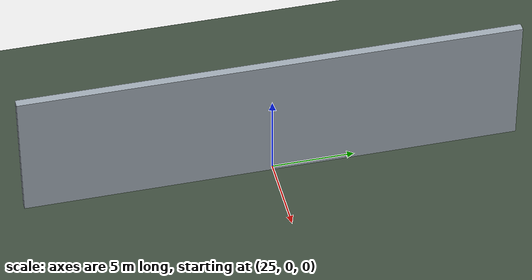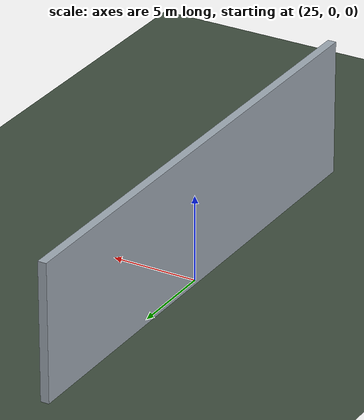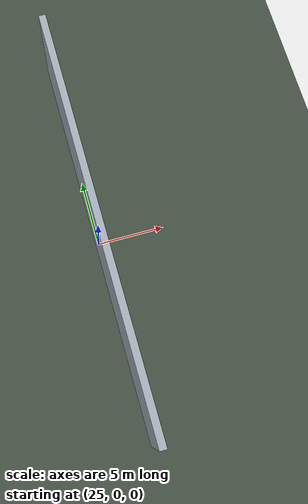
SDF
<?xml version="1.0"?>
<sdf version="1.6">
  <world name="E1_sparse">
    <gravity>0 0 -9.80665</gravity>
    <physics name="ode_1khz" type="ode">
      <max_step_size>0.001</max_step_size>
      <real_time_factor>1.0</real_time_factor>
      <real_time_update_rate>1000</real_time_update_rate>
    </physics>

    <scene>
      <ambient>0.35 0.35 0.35 1</ambient>
      <background>0.65 0.78 0.92 1</background>
      <shadows>false</shadows>
    </scene>

    <light name="sun" type="directional">
      <cast_shadows>false</cast_shadows>
      <pose>0 0 10 0 0 0</pose>
      <diffuse>0.9 0.9 0.9 1</diffuse>
      <specular>0.1 0.1 0.1 1</specular>
      <direction>-0.4 0.2 -0.9</direction>
    </light>

    <include>
      <uri>model://mid360_open_ground</uri>
      <name>open_ground</name>
    </include>

    <include>
      <uri>model://sparse_wide_wall</uri>
      <name>sparse_wide_wall</name>
      <pose>25 0 0 0 0 0</pose>
    </include>

    <!-- The dynamic observer and two targets are spawned by gate_s03.launch. -->
  </world>
</sdf>

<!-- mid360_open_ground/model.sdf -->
<sdf version="1.6">
  <model name="mid360_open_ground">
    <static>true</static>
    <link name="ground_link">
      <collision name="ground_collision">
        <geometry>
          <plane>
            <normal>0 0 1</normal>
            <size>100 100</size>
          </plane>
        </geometry>
        <surface>
          <friction>
            <ode>
              <mu>1.0</mu>
              <mu2>1.0</mu2>
            </ode>
          </friction>
          <contact>
            <collide_without_contact>true</collide_without_contact>
          </contact>
        </surface>
      </collision>
      <visual name="ground_visual">
        <geometry>
          <plane>
            <normal>0 0 1</normal>
            <size>100 100</size>
          </plane>
        </geometry>
        <material>
          <ambient>0.18 0.22 0.18 1</ambient>
          <diffuse>0.24 0.30 0.24 1</diffuse>
          <specular>0.01 0.01 0.01 1</specular>
        </material>
      </visual>
    </link>
  </model>
</sdf>

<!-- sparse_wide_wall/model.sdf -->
<sdf version="1.6">
  <model name="sparse_wide_wall">
    <static>true</static>
    <link name="wall_link">
      <collision name="wall_collision">
        <pose>0 0 4.0 0 0 0</pose>
        <geometry>
          <box>
            <size>0.50 30.00 8.00</size>
          </box>
        </geometry>
      </collision>
      <visual name="wall_visual">
        <pose>0 0 4.0 0 0 0</pose>
        <geometry>
          <box>
            <size>0.50 30.00 8.00</size>
          </box>
        </geometry>
        <material>
          <ambient>0.42 0.45 0.48 1</ambient>
          <diffuse>0.62 0.66 0.70 1</diffuse>
        </material>
      </visual>
    </link>
  </model>
</sdf>
